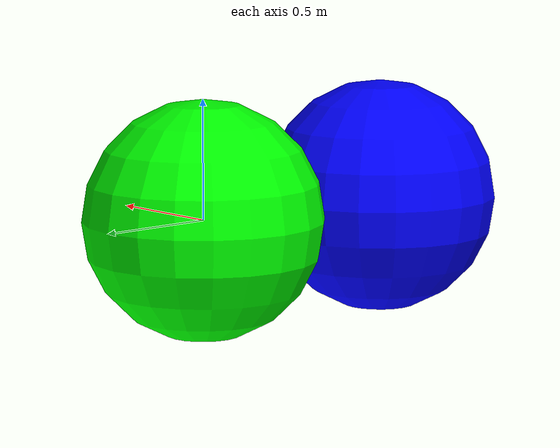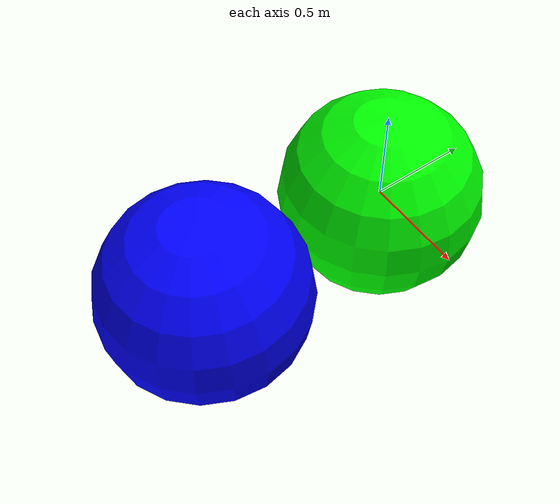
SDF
<?xml version='1.0' ?>
<sdf version="1.6">
  <model name="spheres">
       <link name="sphere_no_added_mass">
        <inertial>
          <inertia>
            <ixx>0.1</ixx>
            <ixy>0</ixy>
            <ixz>0</ixz>
            <iyy>0.1</iyy>
            <iyz>0</iyz>
            <izz>0.1</izz>
          </inertia>
          <mass>1.0</mass>
        </inertial>
        <collision name="sphere_no_added_mass_collision">
          <geometry>
            <sphere>
              <radius>0.5</radius>
            </sphere>
          </geometry>
        </collision>

        <visual name="sphere_no_added_mass_visual">
          <geometry>
            <sphere>
              <radius>0.5</radius>
            </sphere>
          </geometry>
          <material>
            <ambient>0 1 0 1</ambient>
            <diffuse>0 1 0 1</diffuse>
            <specular>0 1 0 1</specular>
          </material>
        </visual>
      </link>

      <link name="sphere_with_added_mass">
      <pose relative_to="sphere_no_added_mass">0 -1 0 0 0 0</pose>
        <inertial>
          <inertia>
            <ixx>0.1</ixx>
            <ixy>0</ixy>
            <ixz>0</ixz>
            <iyy>0.1</iyy>
            <iyz>0</iyz>
            <izz>0.1</izz>
          </inertia>
          <mass>1.0</mass>
          <fluid_added_mass>
            <xx>261.666</xx>
            <yy>261.666</yy>
            <zz>261.666</zz>
          </fluid_added_mass>
        </inertial>
        <collision name="sphere_with_added_mass_collision">
          <geometry>
            <sphere>
              <radius>0.5</radius>
            </sphere>
          </geometry>
        </collision>

        <visual name="sphere_with_added_mass_visual">
          <geometry>
            <sphere>
              <radius>0.5</radius>
            </sphere>
          </geometry>
          <material>
            <ambient>0 0 1 1</ambient>
            <diffuse>0 0 1 1</diffuse>
            <specular>0 0 1 1</specular>
          </material>
        </visual>
      </link>

  </model>
</sdf>
